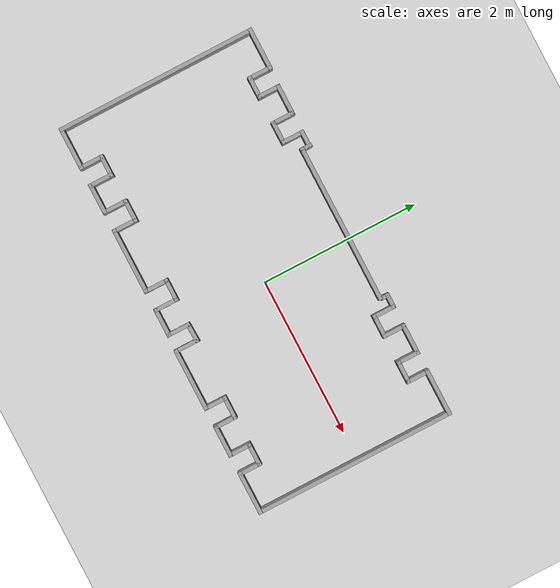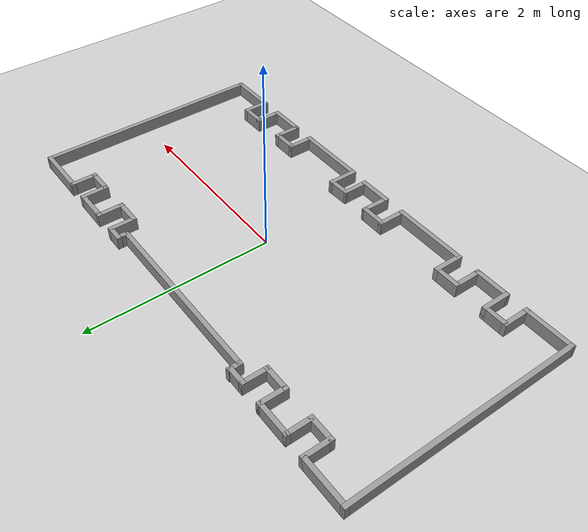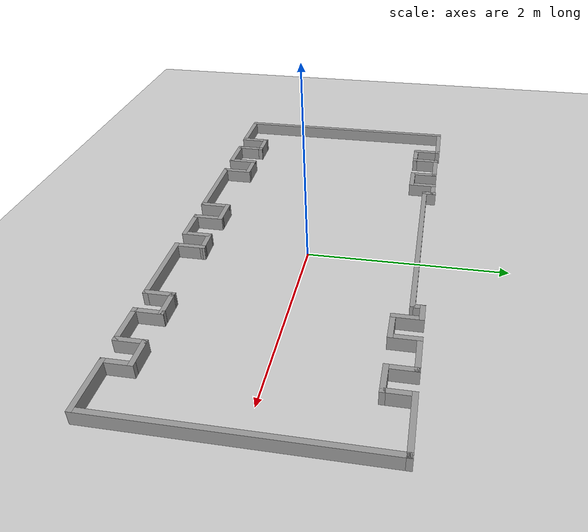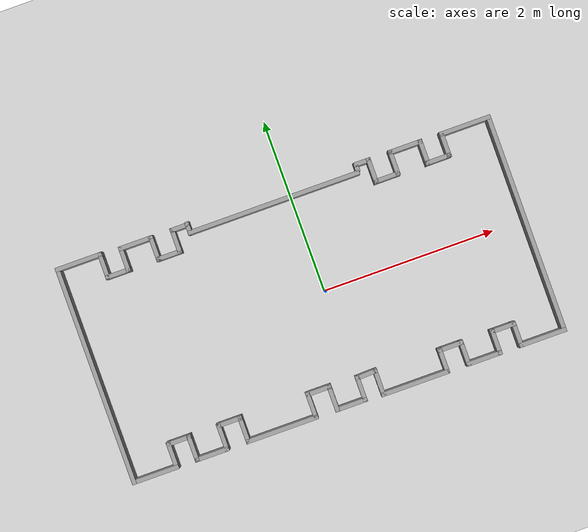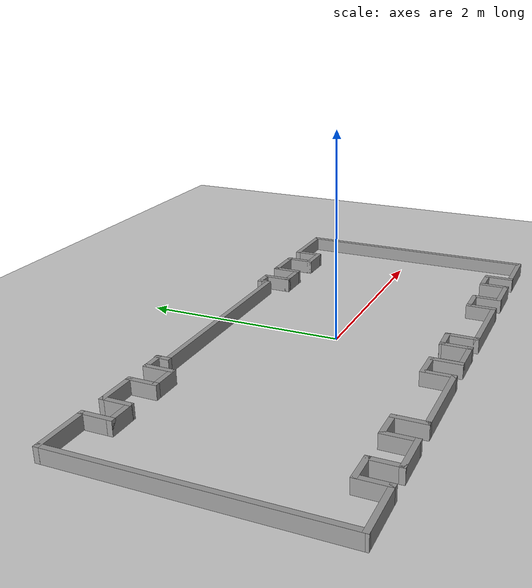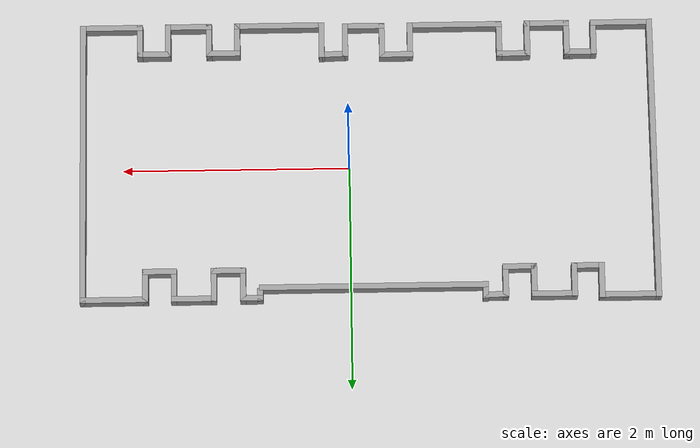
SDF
<?xml version="1.0" ?>
<sdf version="1.5">
  <world name="default">
    <include>
      <uri>model://ground_plane</uri>
    </include>
    <include>
      <uri>model://sun</uri>
    </include>
    <include>
      <uri>model:/home/meroke/code/course03/src/urdf_gazebo/config/type2</uri>
    </include>
  </world>
</sdf>

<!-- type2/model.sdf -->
<sdf version='1.6'>
  <model name='type2'>
    <pose frame=''>-0.172594 -0.03897 0 0 -0 0</pose>
    <link name='Wall_0'>
      <collision name='Wall_0_Collision'>
        <geometry>
          <box>
            <size>0.545377 0.05 0.14</size>
          </box>
        </geometry>
        <pose frame=''>0 0 0.07 0 -0 0</pose>
      </collision>
      <visual name='Wall_0_Visual'>
        <pose frame=''>0 0 0.07 0 -0 0</pose>
        <geometry>
          <box>
            <size>0.545377 0.05 0.14</size>
          </box>
        </geometry>
        <material>
          <script>
            <uri>file://media/materials/scripts/gazebo.material</uri>
            <name>Gazebo/Grey</name>
          </script>
          <ambient>1 1 1 1</ambient>
        </material>
        <meta>
          <layer>0</layer>
        </meta>
      </visual>
      <pose frame=''>-2.27491 1.25397 0 0 -0 0</pose>
    </link>
    <link name='Wall_100'>
      <collision name='Wall_100_Collision'>
        <geometry>
          <box>
            <size>0.3 0.05 0.14</size>
          </box>
        </geometry>
        <pose frame=''>0 0 0.07 0 -0 0</pose>
      </collision>
      <visual name='Wall_100_Visual'>
        <pose frame=''>0 0 0.07 0 -0 0</pose>
        <geometry>
          <box>
            <size>0.3 0.05 0.14</size>
          </box>
        </geometry>
        <material>
          <script>
            <uri>file://media/materials/scripts/gazebo.material</uri>
            <name>Gazebo/Grey</name>
          </script>
          <ambient>1 1 1 1</ambient>
        </material>
        <meta>
          <layer>0</layer>
        </meta>
      </visual>
      <pose frame=''>1.11659 1.11397 0 0 -0 -1.5708</pose>
    </link>
    <link name='Wall_102'>
      <collision name='Wall_102_Collision'>
        <geometry>
          <box>
            <size>0.2 0.05 0.14</size>
          </box>
        </geometry>
        <pose frame=''>0 0 0.07 0 -0 0</pose>
      </collision>
      <visual name='Wall_102_Visual'>
        <pose frame=''>0 0 0.07 0 -0 0</pose>
        <geometry>
          <box>
            <size>0.2 0.05 0.14</size>
          </box>
        </geometry>
        <material>
          <script>
            <uri>file://media/materials/scripts/gazebo.material</uri>
            <name>Gazebo/Grey</name>
          </script>
          <ambient>1 1 1 1</ambient>
        </material>
        <meta>
          <layer>0</layer>
        </meta>
      </visual>
      <pose frame=''>1.04159 1.23897 0 0 -0 3.14159</pose>
    </link>
    <link name='Wall_114'>
      <collision name='Wall_114_Collision'>
        <geometry>
          <box>
            <size>0.11 0.05 0.14</size>
          </box>
        </geometry>
        <pose frame=''>0 0 0.07 0 -0 0</pose>
      </collision>
      <visual name='Wall_114_Visual'>
        <pose frame=''>0 0 0.07 0 -0 0</pose>
        <geometry>
          <box>
            <size>0.11 0.05 0.14</size>
          </box>
        </geometry>
        <material>
          <script>
            <uri>file://media/materials/scripts/gazebo.material</uri>
            <name>Gazebo/Grey</name>
          </script>
          <ambient>1 1 1 1</ambient>
        </material>
        <meta>
          <layer>0</layer>
        </meta>
      </visual>
      <pose frame=''>0.966594 1.20897 0 0 -0 -1.5708</pose>
    </link>
    <link name='Wall_116'>
      <collision name='Wall_116_Collision'>
        <geometry>
          <box>
            <size>2.01 0.05 0.14</size>
          </box>
        </geometry>
        <pose frame=''>0 0 0.07 0 -0 0</pose>
      </collision>
      <visual name='Wall_116_Visual'>
        <pose frame=''>0 0 0.07 0 -0 0</pose>
        <geometry>
          <box>
            <size>2.01 0.05 0.14</size>
          </box>
        </geometry>
        <material>
          <script>
            <uri>file://media/materials/scripts/gazebo.material</uri>
            <name>Gazebo/Grey</name>
          </script>
          <ambient>1 1 1 1</ambient>
        </material>
        <meta>
          <layer>0</layer>
        </meta>
      </visual>
      <pose frame=''>-0.027406 1.14697 0 0 -0 0</pose>
    </link>
    <link name='Wall_118'>
      <collision name='Wall_118_Collision'>
        <geometry>
          <box>
            <size>0.15 0.05 0.14</size>
          </box>
        </geometry>
        <pose frame=''>0 0 0.07 0 -0 0</pose>
      </collision>
      <visual name='Wall_118_Visual'>
        <pose frame=''>0 0 0.07 0 -0 0</pose>
        <geometry>
          <box>
            <size>0.15 0.05 0.14</size>
          </box>
        </geometry>
        <material>
          <script>
            <uri>file://media/materials/scripts/gazebo.material</uri>
            <name>Gazebo/Grey</name>
          </script>
          <ambient>1 1 1 1</ambient>
        </material>
        <meta>
          <layer>0</layer>
        </meta>
      </visual>
      <pose frame=''>-1.00741 1.19697 0 0 -0 1.5708</pose>
    </link>
    <link name='Wall_160'>
      <collision name='Wall_160_Collision'>
        <geometry>
          <box>
            <size>0.22 0.05 0.14</size>
          </box>
        </geometry>
        <pose frame=''>0 0 0.07 0 -0 0</pose>
      </collision>
      <visual name='Wall_160_Visual'>
        <pose frame=''>0 0 0.07 0 -0 0</pose>
        <geometry>
          <box>
            <size>0.22 0.05 0.14</size>
          </box>
        </geometry>
        <material>
          <script>
            <uri>file://media/materials/scripts/gazebo.material</uri>
            <name>Gazebo/Grey</name>
          </script>
          <ambient>1 1 1 1</ambient>
        </material>
        <meta>
          <layer>0</layer>
        </meta>
      </visual>
      <pose frame=''>-1.09941 1.23897 0 0 -0 0</pose>
    </link>
    <link name='Wall_162'>
      <collision name='Wall_162_Collision'>
        <geometry>
          <box>
            <size>0.3 0.05 0.14</size>
          </box>
        </geometry>
        <pose frame=''>0 0 0.07 0 -0 0</pose>
      </collision>
      <visual name='Wall_162_Visual'>
        <pose frame=''>0 0 0.07 0 -0 0</pose>
        <geometry>
          <box>
            <size>0.3 0.05 0.14</size>
          </box>
        </geometry>
        <material>
          <script>
            <uri>file://media/materials/scripts/gazebo.material</uri>
            <name>Gazebo/Grey</name>
          </script>
          <ambient>1 1 1 1</ambient>
        </material>
        <meta>
          <layer>0</layer>
        </meta>
      </visual>
      <pose frame=''>-1.18441 1.11397 0 0 -0 1.5708</pose>
    </link>
    <link name='Wall_164'>
      <collision name='Wall_164_Collision'>
        <geometry>
          <box>
            <size>0.3 0.05 0.14</size>
          </box>
        </geometry>
        <pose frame=''>0 0 0.07 0 -0 0</pose>
      </collision>
      <visual name='Wall_164_Visual'>
        <pose frame=''>0 0 0.07 0 -0 0</pose>
        <geometry>
          <box>
            <size>0.3 0.05 0.14</size>
          </box>
        </geometry>
        <material>
          <script>
            <uri>file://media/materials/scripts/gazebo.material</uri>
            <name>Gazebo/Grey</name>
          </script>
          <ambient>1 1 1 1</ambient>
        </material>
        <meta>
          <layer>0</layer>
        </meta>
      </visual>
      <pose frame=''>-1.30941 0.98897 0 0 -0 3.14159</pose>
    </link>
    <link name='Wall_167'>
      <collision name='Wall_167_Collision'>
        <geometry>
          <box>
            <size>0.3 0.05 0.14</size>
          </box>
        </geometry>
        <pose frame=''>0 0 0.07 0 -0 0</pose>
      </collision>
      <visual name='Wall_167_Visual'>
        <pose frame=''>0 0 0.07 0 -0 0</pose>
        <geometry>
          <box>
            <size>0.3 0.05 0.14</size>
          </box>
        </geometry>
        <material>
          <script>
            <uri>file://media/materials/scripts/gazebo.material</uri>
            <name>Gazebo/Grey</name>
          </script>
          <ambient>1 1 1 1</ambient>
        </material>
        <meta>
          <layer>0</layer>
        </meta>
      </visual>
      <pose frame=''>-1.43441 1.11397 0 0 -0 -1.5708</pose>
    </link>
    <link name='Wall_169'>
      <collision name='Wall_169_Collision'>
        <geometry>
          <box>
            <size>0.403 0.05 0.14</size>
          </box>
        </geometry>
        <pose frame=''>0 0 0.07 0 -0 0</pose>
      </collision>
      <visual name='Wall_169_Visual'>
        <pose frame=''>0 0 0.07 0 -0 0</pose>
        <geometry>
          <box>
            <size>0.403 0.05 0.14</size>
          </box>
        </geometry>
        <material>
          <script>
            <uri>file://media/materials/scripts/gazebo.material</uri>
            <name>Gazebo/Grey</name>
          </script>
          <ambient>1 1 1 1</ambient>
        </material>
        <meta>
          <layer>0</layer>
        </meta>
      </visual>
      <pose frame=''>-1.61091 1.23897 0 0 -0 0</pose>
    </link>
    <link name='Wall_17'>
      <collision name='Wall_17_Collision'>
        <geometry>
          <box>
            <size>0.318 0.05 0.14</size>
          </box>
        </geometry>
        <pose frame=''>0 0 0.07 0 -0 0</pose>
      </collision>
      <visual name='Wall_17_Visual'>
        <pose frame=''>0 0 0.07 0 -0 0</pose>
        <geometry>
          <box>
            <size>0.318 0.05 0.14</size>
          </box>
        </geometry>
        <material>
          <script>
            <uri>file://media/materials/scripts/gazebo.material</uri>
            <name>Gazebo/Grey</name>
          </script>
          <ambient>1 1 1 1</ambient>
        </material>
        <meta>
          <layer>0</layer>
        </meta>
      </visual>
      <pose frame=''>-1.77741 -1.10703 0 0 -0 1.5708</pose>
    </link>
    <link name='Wall_171'>
      <collision name='Wall_171_Collision'>
        <geometry>
          <box>
            <size>0.3 0.05 0.14</size>
          </box>
        </geometry>
        <pose frame=''>0 0 0.07 0 -0 0</pose>
      </collision>
      <visual name='Wall_171_Visual'>
        <pose frame=''>0 0 0.07 0 -0 0</pose>
        <geometry>
          <box>
            <size>0.3 0.05 0.14</size>
          </box>
        </geometry>
        <material>
          <script>
            <uri>file://media/materials/scripts/gazebo.material</uri>
            <name>Gazebo/Grey</name>
          </script>
          <ambient>1 1 1 1</ambient>
        </material>
        <meta>
          <layer>0</layer>
        </meta>
      </visual>
      <pose frame=''>-1.78741 1.11397 0 0 -0 -1.5708</pose>
    </link>
    <link name='Wall_174'>
      <collision name='Wall_174_Collision'>
        <geometry>
          <box>
            <size>0.29 0.05 0.14</size>
          </box>
        </geometry>
        <pose frame=''>0 0 0.07 0 -0 0</pose>
      </collision>
      <visual name='Wall_174_Visual'>
        <pose frame=''>0 0 0.07 0 -0 0</pose>
        <geometry>
          <box>
            <size>0.29 0.05 0.14</size>
          </box>
        </geometry>
        <material>
          <script>
            <uri>file://media/materials/scripts/gazebo.material</uri>
            <name>Gazebo/Grey</name>
          </script>
          <ambient>1 1 1 1</ambient>
        </material>
        <meta>
          <layer>0</layer>
        </meta>
      </visual>
      <pose frame=''>-1.90741 0.98897 0 0 -0 0</pose>
    </link>
    <link name='Wall_176'>
      <collision name='Wall_176_Collision'>
        <geometry>
          <box>
            <size>0.315 0.05 0.14</size>
          </box>
        </geometry>
        <pose frame=''>0 0 0.07 0 -0 0</pose>
      </collision>
      <visual name='Wall_176_Visual'>
        <pose frame=''>0 0 0.07 0 -0 0</pose>
        <geometry>
          <box>
            <size>0.315 0.05 0.14</size>
          </box>
        </geometry>
        <material>
          <script>
            <uri>file://media/materials/scripts/gazebo.material</uri>
            <name>Gazebo/Grey</name>
          </script>
          <ambient>1 1 1 1</ambient>
        </material>
        <meta>
          <layer>0</layer>
        </meta>
      </visual>
      <pose frame=''>-2.02741 1.12147 0 0 -0 1.5708</pose>
    </link>
    <link name='Wall_19'>
      <collision name='Wall_19_Collision'>
        <geometry>
          <box>
            <size>0.4 0.05 0.14</size>
          </box>
        </geometry>
        <pose frame=''>0 0 0.07 0 -0 0</pose>
      </collision>
      <visual name='Wall_19_Visual'>
        <pose frame=''>0 0 0.07 0 -0 0</pose>
        <geometry>
          <box>
            <size>0.4 0.05 0.14</size>
          </box>
        </geometry>
        <material>
          <script>
            <uri>file://media/materials/scripts/gazebo.material</uri>
            <name>Gazebo/Grey</name>
          </script>
          <ambient>1 1 1 1</ambient>
        </material>
        <meta>
          <layer>0</layer>
        </meta>
      </visual>
      <pose frame=''>-1.60241 -1.24103 0 0 -0 0</pose>
    </link>
    <link name='Wall_2'>
      <collision name='Wall_2_Collision'>
        <geometry>
          <box>
            <size>2.54601 0.05 0.14</size>
          </box>
        </geometry>
        <pose frame=''>0 0 0.07 0 -0 0</pose>
      </collision>
      <visual name='Wall_2_Visual'>
        <pose frame=''>0 0 0.07 0 -0 0</pose>
        <geometry>
          <box>
            <size>2.54601 0.05 0.14</size>
          </box>
        </geometry>
        <material>
          <script>
            <uri>file://media/materials/scripts/gazebo.material</uri>
            <name>Gazebo/Grey</name>
          </script>
          <ambient>1 1 1 1</ambient>
        </material>
        <meta>
          <layer>0</layer>
        </meta>
      </visual>
      <pose frame=''>-2.51941 0.00597 0 0 -0 -1.56839</pose>
    </link>
    <link name='Wall_21'>
      <collision name='Wall_21_Collision'>
        <geometry>
          <box>
            <size>0.325 0.05 0.14</size>
          </box>
        </geometry>
        <pose frame=''>0 0 0.07 0 -0 0</pose>
      </collision>
      <visual name='Wall_21_Visual'>
        <pose frame=''>0 0 0.07 0 -0 0</pose>
        <geometry>
          <box>
            <size>0.325 0.05 0.14</size>
          </box>
        </geometry>
        <material>
          <script>
            <uri>file://media/materials/scripts/gazebo.material</uri>
            <name>Gazebo/Grey</name>
          </script>
          <ambient>1 1 1 1</ambient>
        </material>
        <meta>
          <layer>0</layer>
        </meta>
      </visual>
      <pose frame=''>-1.42741 -1.10353 0 0 -0 1.5708</pose>
    </link>
    <link name='Wall_25'>
      <collision name='Wall_25_Collision'>
        <geometry>
          <box>
            <size>0.3 0.05 0.14</size>
          </box>
        </geometry>
        <pose frame=''>0 0 0.07 0 -0 0</pose>
      </collision>
      <visual name='Wall_25_Visual'>
        <pose frame=''>0 0 0.07 0 -0 0</pose>
        <geometry>
          <box>
            <size>0.3 0.05 0.14</size>
          </box>
        </geometry>
        <material>
          <script>
            <uri>file://media/materials/scripts/gazebo.material</uri>
            <name>Gazebo/Grey</name>
          </script>
          <ambient>1 1 1 1</ambient>
        </material>
        <meta>
          <layer>0</layer>
        </meta>
      </visual>
      <pose frame=''>-1.30241 -0.96603 0 0 -0 3.14159</pose>
    </link>
    <link name='Wall_28'>
      <collision name='Wall_28_Collision'>
        <geometry>
          <box>
            <size>0.325 0.05 0.14</size>
          </box>
        </geometry>
        <pose frame=''>0 0 0.07 0 -0 0</pose>
      </collision>
      <visual name='Wall_28_Visual'>
        <pose frame=''>0 0 0.07 0 -0 0</pose>
        <geometry>
          <box>
            <size>0.325 0.05 0.14</size>
          </box>
        </geometry>
        <material>
          <script>
            <uri>file://media/materials/scripts/gazebo.material</uri>
            <name>Gazebo/Grey</name>
          </script>
          <ambient>1 1 1 1</ambient>
        </material>
        <meta>
          <layer>0</layer>
        </meta>
      </visual>
      <pose frame=''>-1.17741 -1.10353 0 0 -0 -1.5708</pose>
    </link>
    <link name='Wall_31'>
      <collision name='Wall_31_Collision'>
        <geometry>
          <box>
            <size>0.843 0.05 0.14</size>
          </box>
        </geometry>
        <pose frame=''>0 0 0.07 0 -0 0</pose>
      </collision>
      <visual name='Wall_31_Visual'>
        <pose frame=''>0 0 0.07 0 -0 0</pose>
        <geometry>
          <box>
            <size>0.843 0.05 0.14</size>
          </box>
        </geometry>
        <material>
          <script>
            <uri>file://media/materials/scripts/gazebo.material</uri>
            <name>Gazebo/Grey</name>
          </script>
          <ambient>1 1 1 1</ambient>
        </material>
        <meta>
          <layer>0</layer>
        </meta>
      </visual>
      <pose frame=''>-0.780906 -1.24103 0 0 -0 0</pose>
    </link>
    <link name='Wall_326'>
      <collision name='Wall_326_Collision'>
        <geometry>
          <box>
            <size>0.6 0.05 0.14</size>
          </box>
        </geometry>
        <pose frame=''>0 0 0.07 0 -0 0</pose>
      </collision>
      <visual name='Wall_326_Visual'>
        <pose frame=''>0 0 0.07 0 -0 0</pose>
        <geometry>
          <box>
            <size>0.6 0.05 0.14</size>
          </box>
        </geometry>
        <material>
          <script>
            <uri>file://media/materials/scripts/gazebo.material</uri>
            <name>Gazebo/Grey</name>
          </script>
          <ambient>1 1 1 1</ambient>
        </material>
        <meta>
          <layer>0</layer>
        </meta>
      </visual>
      <pose frame=''>2.24759 1.23897 0 0 -0 0</pose>
    </link>
    <link name='Wall_329'>
      <collision name='Wall_329_Collision'>
        <geometry>
          <box>
            <size>0.416 0.05 0.14</size>
          </box>
        </geometry>
        <pose frame=''>0 0 0.07 0 -0 0</pose>
      </collision>
      <visual name='Wall_329_Visual'>
        <pose frame=''>0 0 0.07 0 -0 0</pose>
        <geometry>
          <box>
            <size>0.416 0.05 0.14</size>
          </box>
        </geometry>
        <material>
          <script>
            <uri>file://media/materials/scripts/gazebo.material</uri>
            <name>Gazebo/Grey</name>
          </script>
          <ambient>1 1 1 1</ambient>
        </material>
        <meta>
          <layer>0</layer>
        </meta>
      </visual>
      <pose frame=''>1.58559 -1.25403 0 0 -0 3.14159</pose>
    </link>
    <link name='Wall_33'>
      <collision name='Wall_33_Collision'>
        <geometry>
          <box>
            <size>0.318 0.05 0.14</size>
          </box>
        </geometry>
        <pose frame=''>0 0 0.07 0 -0 0</pose>
      </collision>
      <visual name='Wall_33_Visual'>
        <pose frame=''>0 0 0.07 0 -0 0</pose>
        <geometry>
          <box>
            <size>0.318 0.05 0.14</size>
          </box>
        </geometry>
        <material>
          <script>
            <uri>file://media/materials/scripts/gazebo.material</uri>
            <name>Gazebo/Grey</name>
          </script>
          <ambient>1 1 1 1</ambient>
        </material>
        <meta>
          <layer>0</layer>
        </meta>
      </visual>
      <pose frame=''>-0.384406 -1.10703 0 0 -0 1.5708</pose>
    </link>
    <link name='Wall_36'>
      <collision name='Wall_36_Collision'>
        <geometry>
          <box>
            <size>0.3 0.05 0.14</size>
          </box>
        </geometry>
        <pose frame=''>0 0 0.07 0 -0 0</pose>
      </collision>
      <visual name='Wall_36_Visual'>
        <pose frame=''>0 0 0.07 0 -0 0</pose>
        <geometry>
          <box>
            <size>0.3 0.05 0.14</size>
          </box>
        </geometry>
        <material>
          <script>
            <uri>file://media/materials/scripts/gazebo.material</uri>
            <name>Gazebo/Grey</name>
          </script>
          <ambient>1 1 1 1</ambient>
        </material>
        <meta>
          <layer>0</layer>
        </meta>
      </visual>
      <pose frame=''>-0.259406 -0.97303 0 0 -0 0</pose>
    </link>
    <link name='Wall_38'>
      <collision name='Wall_38_Collision'>
        <geometry>
          <box>
            <size>0.318 0.05 0.14</size>
          </box>
        </geometry>
        <pose frame=''>0 0 0.07 0 -0 0</pose>
      </collision>
      <visual name='Wall_38_Visual'>
        <pose frame=''>0 0 0.07 0 -0 0</pose>
        <geometry>
          <box>
            <size>0.318 0.05 0.14</size>
          </box>
        </geometry>
        <material>
          <script>
            <uri>file://media/materials/scripts/gazebo.material</uri>
            <name>Gazebo/Grey</name>
          </script>
          <ambient>1 1 1 1</ambient>
        </material>
        <meta>
          <layer>0</layer>
        </meta>
      </visual>
      <pose frame=''>-0.134406 -1.10703 0 0 -0 -1.5708</pose>
    </link>
    <link name='Wall_4'>
      <collision name='Wall_4_Collision'>
        <geometry>
          <box>
            <size>0.55 0.05 0.14</size>
          </box>
        </geometry>
        <pose frame=''>0 0 0.07 0 -0 0</pose>
      </collision>
      <visual name='Wall_4_Visual'>
        <pose frame=''>0 0 0.07 0 -0 0</pose>
        <geometry>
          <box>
            <size>0.55 0.05 0.14</size>
          </box>
        </geometry>
        <material>
          <script>
            <uri>file://media/materials/scripts/gazebo.material</uri>
            <name>Gazebo/Grey</name>
          </script>
          <ambient>1 1 1 1</ambient>
        </material>
        <meta>
          <layer>0</layer>
        </meta>
      </visual>
      <pose frame=''>-2.26641 -1.24203 0 0 -0 0</pose>
    </link>
    <link name='Wall_41'>
      <collision name='Wall_41_Collision'>
        <geometry>
          <box>
            <size>0.377 0.05 0.14</size>
          </box>
        </geometry>
        <pose frame=''>0 0 0.07 0 -0 0</pose>
      </collision>
      <visual name='Wall_41_Visual'>
        <pose frame=''>0 0 0.07 0 -0 0</pose>
        <geometry>
          <box>
            <size>0.377 0.05 0.14</size>
          </box>
        </geometry>
        <material>
          <script>
            <uri>file://media/materials/scripts/gazebo.material</uri>
            <name>Gazebo/Grey</name>
          </script>
          <ambient>1 1 1 1</ambient>
        </material>
        <meta>
          <layer>0</layer>
        </meta>
      </visual>
      <pose frame=''>0.029094 -1.24103 0 0 -0 0</pose>
    </link>
    <link name='Wall_43'>
      <collision name='Wall_43_Collision'>
        <geometry>
          <box>
            <size>0.305259 0.05 0.14</size>
          </box>
        </geometry>
        <pose frame=''>0 0 0.07 0 -0 0</pose>
      </collision>
      <visual name='Wall_43_Visual'>
        <pose frame=''>0 0 0.07 0 -0 0</pose>
        <geometry>
          <box>
            <size>0.305259 0.05 0.14</size>
          </box>
        </geometry>
        <material>
          <script>
            <uri>file://media/materials/scripts/gazebo.material</uri>
            <name>Gazebo/Grey</name>
          </script>
          <ambient>1 1 1 1</ambient>
        </material>
        <meta>
          <layer>0</layer>
        </meta>
      </visual>
      <pose frame=''>0.192594 -1.11353 0 0 -0 1.5708</pose>
    </link>
    <link name='Wall_46'>
      <collision name='Wall_46_Collision'>
        <geometry>
          <box>
            <size>0.26 0.05 0.14</size>
          </box>
        </geometry>
        <pose frame=''>0 0 0.07 0 -0 0</pose>
      </collision>
      <visual name='Wall_46_Visual'>
        <pose frame=''>0 0 0.07 0 -0 0</pose>
        <geometry>
          <box>
            <size>0.26 0.05 0.14</size>
          </box>
        </geometry>
        <material>
          <script>
            <uri>file://media/materials/scripts/gazebo.material</uri>
            <name>Gazebo/Grey</name>
          </script>
          <ambient>1 1 1 1</ambient>
        </material>
        <meta>
          <layer>0</layer>
        </meta>
      </visual>
      <pose frame=''>0.297594 -0.98253 0 0 -0 0.033321</pose>
    </link>
    <link name='Wall_52'>
      <collision name='Wall_52_Collision'>
        <geometry>
          <box>
            <size>0.324614 0.05 0.14</size>
          </box>
        </geometry>
        <pose frame=''>0 0 0.07 0 -0 0</pose>
      </collision>
      <visual name='Wall_52_Visual'>
        <pose frame=''>0 0 0.07 0 -0 0</pose>
        <geometry>
          <box>
            <size>0.324614 0.05 0.14</size>
          </box>
        </geometry>
        <material>
          <script>
            <uri>file://media/materials/scripts/gazebo.material</uri>
            <name>Gazebo/Grey</name>
          </script>
          <ambient>1 1 1 1</ambient>
        </material>
        <meta>
          <layer>0</layer>
        </meta>
      </visual>
      <pose frame=''>0.402594 -1.11653 0 0 -0 -1.5708</pose>
    </link>
    <link name='Wall_56'>
      <collision name='Wall_56_Collision'>
        <geometry>
          <box>
            <size>0.8 0.05 0.14</size>
          </box>
        </geometry>
        <pose frame=''>0 0 0.07 0 -0 0</pose>
      </collision>
      <visual name='Wall_56_Visual'>
        <pose frame=''>0 0 0.07 0 -0 0</pose>
        <geometry>
          <box>
            <size>0.8 0.05 0.14</size>
          </box>
        </geometry>
        <material>
          <script>
            <uri>file://media/materials/scripts/gazebo.material</uri>
            <name>Gazebo/Grey</name>
          </script>
          <ambient>1 1 1 1</ambient>
        </material>
        <meta>
          <layer>0</layer>
        </meta>
      </visual>
      <pose frame=''>0.777594 -1.25403 0 0 -0 0</pose>
    </link>
    <link name='Wall_58'>
      <collision name='Wall_58_Collision'>
        <geometry>
          <box>
            <size>0.3 0.05 0.14</size>
          </box>
        </geometry>
        <pose frame=''>0 0 0.07 0 -0 0</pose>
      </collision>
      <visual name='Wall_58_Visual'>
        <pose frame=''>0 0 0.07 0 -0 0</pose>
        <geometry>
          <box>
            <size>0.3 0.05 0.14</size>
          </box>
        </geometry>
        <material>
          <script>
            <uri>file://media/materials/scripts/gazebo.material</uri>
            <name>Gazebo/Grey</name>
          </script>
          <ambient>1 1 1 1</ambient>
        </material>
        <meta>
          <layer>0</layer>
        </meta>
      </visual>
      <pose frame=''>1.15259 -1.12903 0 0 -0 1.5708</pose>
    </link>
    <link name='Wall_6'>
      <collision name='Wall_6_Collision'>
        <geometry>
          <box>
            <size>0.31903 0.05 0.14</size>
          </box>
        </geometry>
        <pose frame=''>0 0 0.07 0 -0 0</pose>
      </collision>
      <visual name='Wall_6_Visual'>
        <pose frame=''>0 0 0.07 0 -0 0</pose>
        <geometry>
          <box>
            <size>0.31903 0.05 0.14</size>
          </box>
        </geometry>
        <material>
          <script>
            <uri>file://media/materials/scripts/gazebo.material</uri>
            <name>Gazebo/Grey</name>
          </script>
          <ambient>1 1 1 1</ambient>
        </material>
        <meta>
          <layer>0</layer>
        </meta>
      </visual>
      <pose frame=''>-2.01641 -1.10753 0 0 -0 1.5708</pose>
    </link>
    <link name='Wall_61'>
      <collision name='Wall_61_Collision'>
        <geometry>
          <box>
            <size>0.3 0.05 0.14</size>
          </box>
        </geometry>
        <pose frame=''>0 0 0.07 0 -0 0</pose>
      </collision>
      <visual name='Wall_61_Visual'>
        <pose frame=''>0 0 0.07 0 -0 0</pose>
        <geometry>
          <box>
            <size>0.3 0.05 0.14</size>
          </box>
        </geometry>
        <material>
          <script>
            <uri>file://media/materials/scripts/gazebo.material</uri>
            <name>Gazebo/Grey</name>
          </script>
          <ambient>1 1 1 1</ambient>
        </material>
        <meta>
          <layer>0</layer>
        </meta>
      </visual>
      <pose frame=''>1.27759 -1.00403 0 0 -0 0</pose>
    </link>
    <link name='Wall_65'>
      <collision name='Wall_65_Collision'>
        <geometry>
          <box>
            <size>0.3 0.05 0.14</size>
          </box>
        </geometry>
        <pose frame=''>0 0 0.07 0 -0 0</pose>
      </collision>
      <visual name='Wall_65_Visual'>
        <pose frame=''>0 0 0.07 0 -0 0</pose>
        <geometry>
          <box>
            <size>0.3 0.05 0.14</size>
          </box>
        </geometry>
        <material>
          <script>
            <uri>file://media/materials/scripts/gazebo.material</uri>
            <name>Gazebo/Grey</name>
          </script>
          <ambient>1 1 1 1</ambient>
        </material>
        <meta>
          <layer>0</layer>
        </meta>
      </visual>
      <pose frame=''>1.40259 -1.12903 0 0 -0 -1.5708</pose>
    </link>
    <link name='Wall_73'>
      <collision name='Wall_73_Collision'>
        <geometry>
          <box>
            <size>0.3 0.05 0.14</size>
          </box>
        </geometry>
        <pose frame=''>0 0 0.07 0 -0 0</pose>
      </collision>
      <visual name='Wall_73_Visual'>
        <pose frame=''>0 0 0.07 0 -0 0</pose>
        <geometry>
          <box>
            <size>0.3 0.05 0.14</size>
          </box>
        </geometry>
        <material>
          <script>
            <uri>file://media/materials/scripts/gazebo.material</uri>
            <name>Gazebo/Grey</name>
          </script>
          <ambient>1 1 1 1</ambient>
        </material>
        <meta>
          <layer>0</layer>
        </meta>
      </visual>
      <pose frame=''>1.76859 -1.12903 0 0 -0 1.5708</pose>
    </link>
    <link name='Wall_76'>
      <collision name='Wall_76_Collision'>
        <geometry>
          <box>
            <size>0.3 0.05 0.14</size>
          </box>
        </geometry>
        <pose frame=''>0 0 0.07 0 -0 0</pose>
      </collision>
      <visual name='Wall_76_Visual'>
        <pose frame=''>0 0 0.07 0 -0 0</pose>
        <geometry>
          <box>
            <size>0.3 0.05 0.14</size>
          </box>
        </geometry>
        <material>
          <script>
            <uri>file://media/materials/scripts/gazebo.material</uri>
            <name>Gazebo/Grey</name>
          </script>
          <ambient>1 1 1 1</ambient>
        </material>
        <meta>
          <layer>0</layer>
        </meta>
      </visual>
      <pose frame=''>1.89359 -1.00403 0 0 -0 3.14159</pose>
    </link>
    <link name='Wall_78'>
      <collision name='Wall_78_Collision'>
        <geometry>
          <box>
            <size>0.3 0.05 0.14</size>
          </box>
        </geometry>
        <pose frame=''>0 0 0.07 0 -0 0</pose>
      </collision>
      <visual name='Wall_78_Visual'>
        <pose frame=''>0 0 0.07 0 -0 0</pose>
        <geometry>
          <box>
            <size>0.3 0.05 0.14</size>
          </box>
        </geometry>
        <material>
          <script>
            <uri>file://media/materials/scripts/gazebo.material</uri>
            <name>Gazebo/Grey</name>
          </script>
          <ambient>1 1 1 1</ambient>
        </material>
        <meta>
          <layer>0</layer>
        </meta>
      </visual>
      <pose frame=''>2.01859 -1.12903 0 0 -0 -1.5708</pose>
    </link>
    <link name='Wall_81'>
      <collision name='Wall_81_Collision'>
        <geometry>
          <box>
            <size>0.554 0.05 0.14</size>
          </box>
        </geometry>
        <pose frame=''>0 0 0.07 0 -0 0</pose>
      </collision>
      <visual name='Wall_81_Visual'>
        <pose frame=''>0 0 0.07 0 -0 0</pose>
        <geometry>
          <box>
            <size>0.554 0.05 0.14</size>
          </box>
        </geometry>
        <material>
          <script>
            <uri>file://media/materials/scripts/gazebo.material</uri>
            <name>Gazebo/Grey</name>
          </script>
          <ambient>1 1 1 1</ambient>
        </material>
        <meta>
          <layer>0</layer>
        </meta>
      </visual>
      <pose frame=''>2.27059 -1.25403 0 0 -0 3.14159</pose>
    </link>
    <link name='Wall_83'>
      <collision name='Wall_83_Collision'>
        <geometry>
          <box>
            <size>2.543 0.05 0.14</size>
          </box>
        </geometry>
        <pose frame=''>0 0 0.07 0 -0 0</pose>
      </collision>
      <visual name='Wall_83_Visual'>
        <pose frame=''>0 0 0.07 0 -0 0</pose>
        <geometry>
          <box>
            <size>2.543 0.05 0.14</size>
          </box>
        </geometry>
        <material>
          <script>
            <uri>file://media/materials/scripts/gazebo.material</uri>
            <name>Gazebo/Grey</name>
          </script>
          <ambient>1 1 1 1</ambient>
        </material>
        <meta>
          <layer>0</layer>
        </meta>
      </visual>
      <pose frame=''>2.52259 -0.00753 0 0 -0 1.5708</pose>
    </link>
    <link name='Wall_87'>
      <collision name='Wall_87_Collision'>
        <geometry>
          <box>
            <size>0.3 0.05 0.14</size>
          </box>
        </geometry>
        <pose frame=''>0 0 0.07 0 -0 0</pose>
      </collision>
      <visual name='Wall_87_Visual'>
        <pose frame=''>0 0 0.07 0 -0 0</pose>
        <geometry>
          <box>
            <size>0.3 0.05 0.14</size>
          </box>
        </geometry>
        <material>
          <script>
            <uri>file://media/materials/scripts/gazebo.material</uri>
            <name>Gazebo/Grey</name>
          </script>
          <ambient>1 1 1 1</ambient>
        </material>
        <meta>
          <layer>0</layer>
        </meta>
      </visual>
      <pose frame=''>1.97259 1.11397 0 0 -0 -1.5708</pose>
    </link>
    <link name='Wall_9'>
      <collision name='Wall_9_Collision'>
        <geometry>
          <box>
            <size>0.289 0.05 0.14</size>
          </box>
        </geometry>
        <pose frame=''>0 0 0.07 0 -0 0</pose>
      </collision>
      <visual name='Wall_9_Visual'>
        <pose frame=''>0 0 0.07 0 -0 0</pose>
        <geometry>
          <box>
            <size>0.289 0.05 0.14</size>
          </box>
        </geometry>
        <material>
          <script>
            <uri>file://media/materials/scripts/gazebo.material</uri>
            <name>Gazebo/Grey</name>
          </script>
          <ambient>1 1 1 1</ambient>
        </material>
        <meta>
          <layer>0</layer>
        </meta>
      </visual>
      <pose frame=''>-1.89691 -0.97303 0 0 -0 0</pose>
    </link>
    <link name='Wall_90'>
      <collision name='Wall_90_Collision'>
        <geometry>
          <box>
            <size>0.3 0.05 0.14</size>
          </box>
        </geometry>
        <pose frame=''>0 0 0.07 0 -0 0</pose>
      </collision>
      <visual name='Wall_90_Visual'>
        <pose frame=''>0 0 0.07 0 -0 0</pose>
        <geometry>
          <box>
            <size>0.3 0.05 0.14</size>
          </box>
        </geometry>
        <material>
          <script>
            <uri>file://media/materials/scripts/gazebo.material</uri>
            <name>Gazebo/Grey</name>
          </script>
          <ambient>1 1 1 1</ambient>
        </material>
        <meta>
          <layer>0</layer>
        </meta>
      </visual>
      <pose frame=''>1.84759 0.98897 0 0 -0 0</pose>
    </link>
    <link name='Wall_92'>
      <collision name='Wall_92_Collision'>
        <geometry>
          <box>
            <size>0.3 0.05 0.14</size>
          </box>
        </geometry>
        <pose frame=''>0 0 0.07 0 -0 0</pose>
      </collision>
      <visual name='Wall_92_Visual'>
        <pose frame=''>0 0 0.07 0 -0 0</pose>
        <geometry>
          <box>
            <size>0.3 0.05 0.14</size>
          </box>
        </geometry>
        <material>
          <script>
            <uri>file://media/materials/scripts/gazebo.material</uri>
            <name>Gazebo/Grey</name>
          </script>
          <ambient>1 1 1 1</ambient>
        </material>
        <meta>
          <layer>0</layer>
        </meta>
      </visual>
      <pose frame=''>1.72259 1.11397 0 0 -0 -1.5708</pose>
    </link>
    <link name='Wall_94'>
      <collision name='Wall_94_Collision'>
        <geometry>
          <box>
            <size>0.4 0.05 0.14</size>
          </box>
        </geometry>
        <pose frame=''>0 0 0.07 0 -0 0</pose>
      </collision>
      <visual name='Wall_94_Visual'>
        <pose frame=''>0 0 0.07 0 -0 0</pose>
        <geometry>
          <box>
            <size>0.4 0.05 0.14</size>
          </box>
        </geometry>
        <material>
          <script>
            <uri>file://media/materials/scripts/gazebo.material</uri>
            <name>Gazebo/Grey</name>
          </script>
          <ambient>1 1 1 1</ambient>
        </material>
        <meta>
          <layer>0</layer>
        </meta>
      </visual>
      <pose frame=''>1.54759 1.23897 0 0 -0 3.14159</pose>
    </link>
    <link name='Wall_96'>
      <collision name='Wall_96_Collision'>
        <geometry>
          <box>
            <size>0.30088 0.05 0.14</size>
          </box>
        </geometry>
        <pose frame=''>0 0 0.07 0 -0 0</pose>
      </collision>
      <visual name='Wall_96_Visual'>
        <pose frame=''>0 0 0.07 0 -0 0</pose>
        <geometry>
          <box>
            <size>0.30088 0.05 0.14</size>
          </box>
        </geometry>
        <material>
          <script>
            <uri>file://media/materials/scripts/gazebo.material</uri>
            <name>Gazebo/Grey</name>
          </script>
          <ambient>1 1 1 1</ambient>
        </material>
        <meta>
          <layer>0</layer>
        </meta>
      </visual>
      <pose frame=''>1.37259 1.11397 0 0 -0 1.5708</pose>
    </link>
    <link name='Wall_98'>
      <collision name='Wall_98_Collision'>
        <geometry>
          <box>
            <size>0.306 0.05 0.14</size>
          </box>
        </geometry>
        <pose frame=''>0 0 0.07 0 -0 0</pose>
      </collision>
      <visual name='Wall_98_Visual'>
        <pose frame=''>0 0 0.07 0 -0 0</pose>
        <geometry>
          <box>
            <size>0.306 0.05 0.14</size>
          </box>
        </geometry>
        <material>
          <script>
            <uri>file://media/materials/scripts/gazebo.material</uri>
            <name>Gazebo/Grey</name>
          </script>
          <ambient>1 1 1 1</ambient>
        </material>
        <meta>
          <layer>0</layer>
        </meta>
      </visual>
      <pose frame=''>1.24459 0.98897 0 0 -0 0</pose>
    </link>
    <static>1</static>
  </model>
</sdf>
